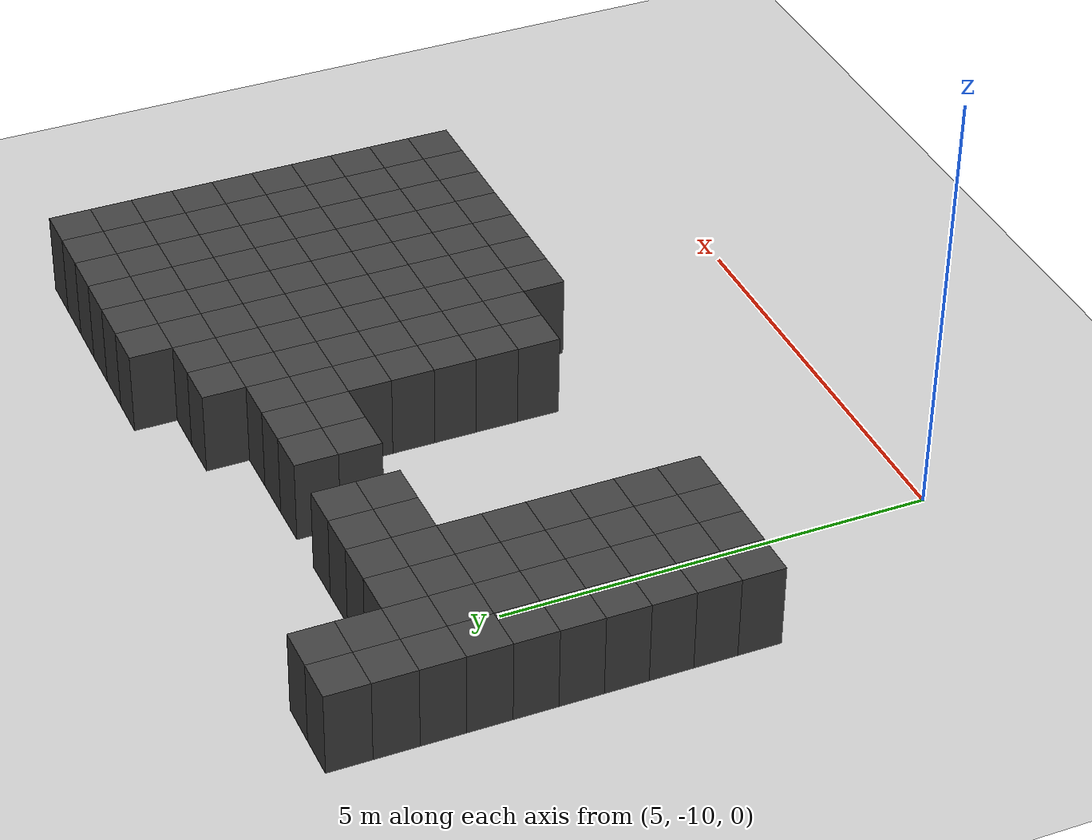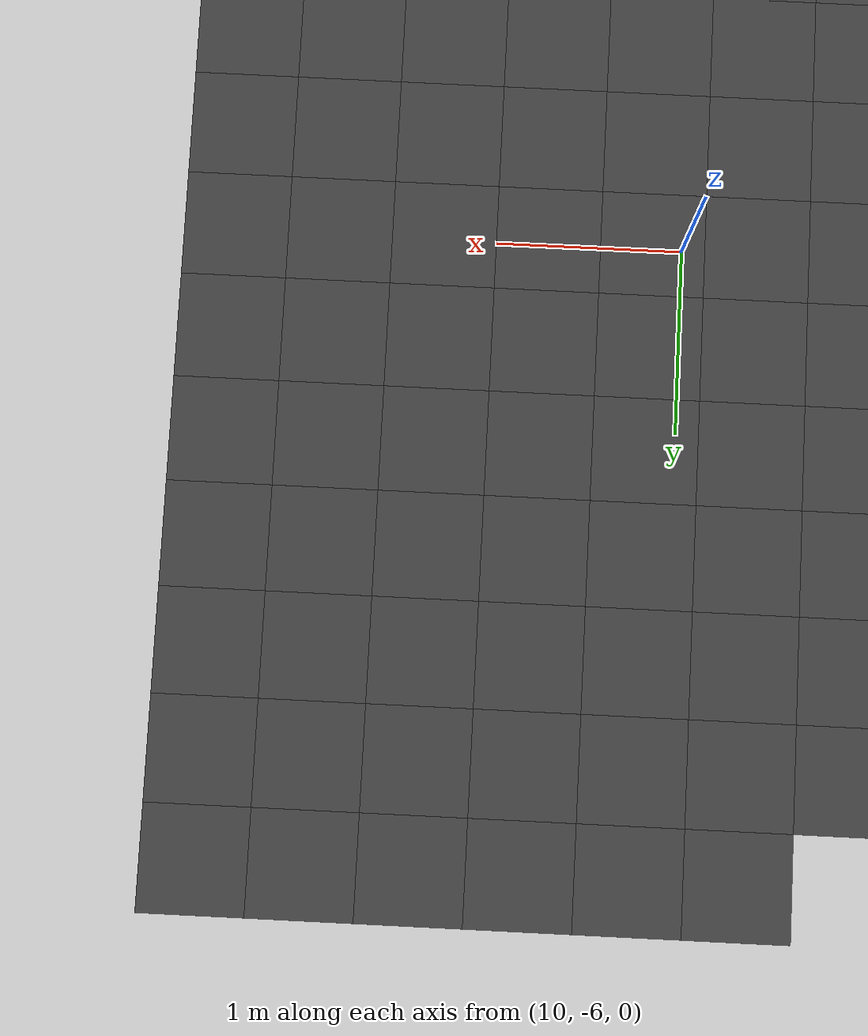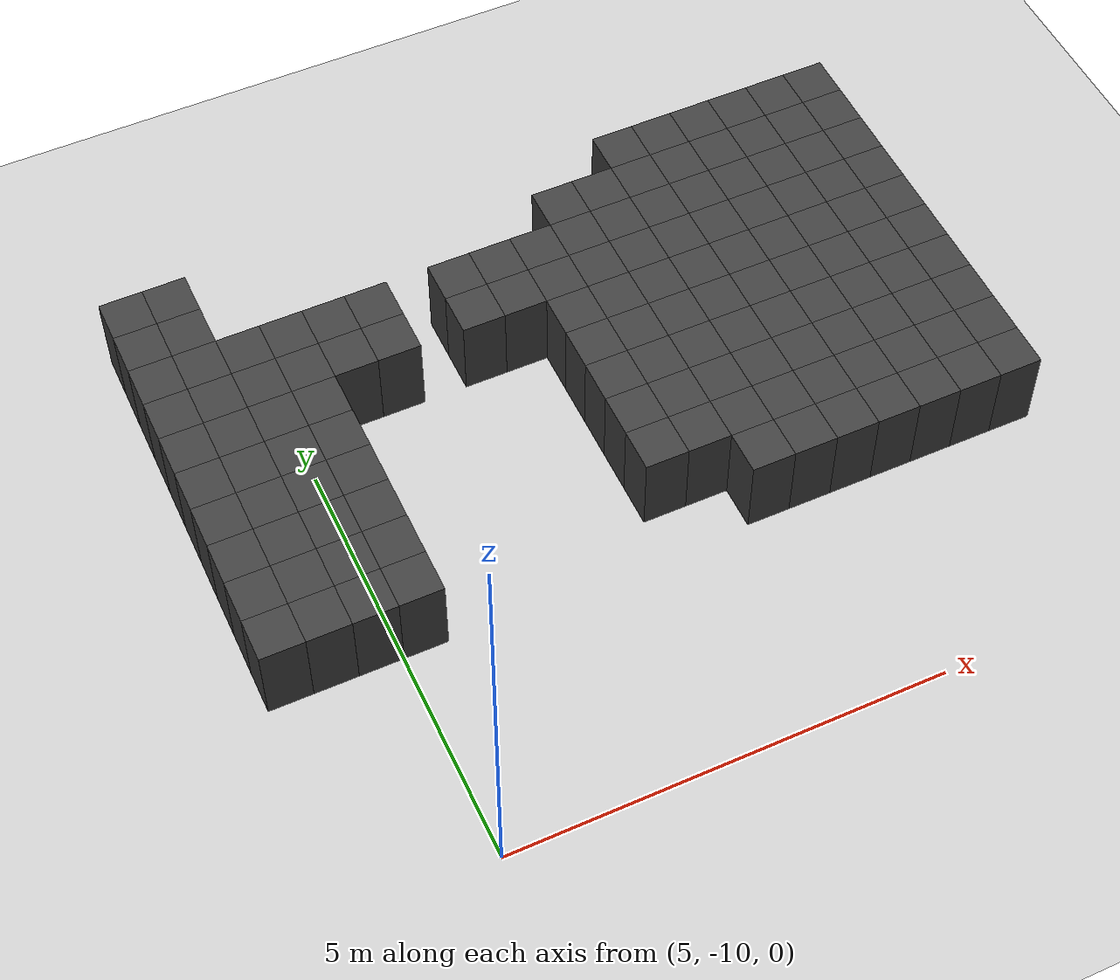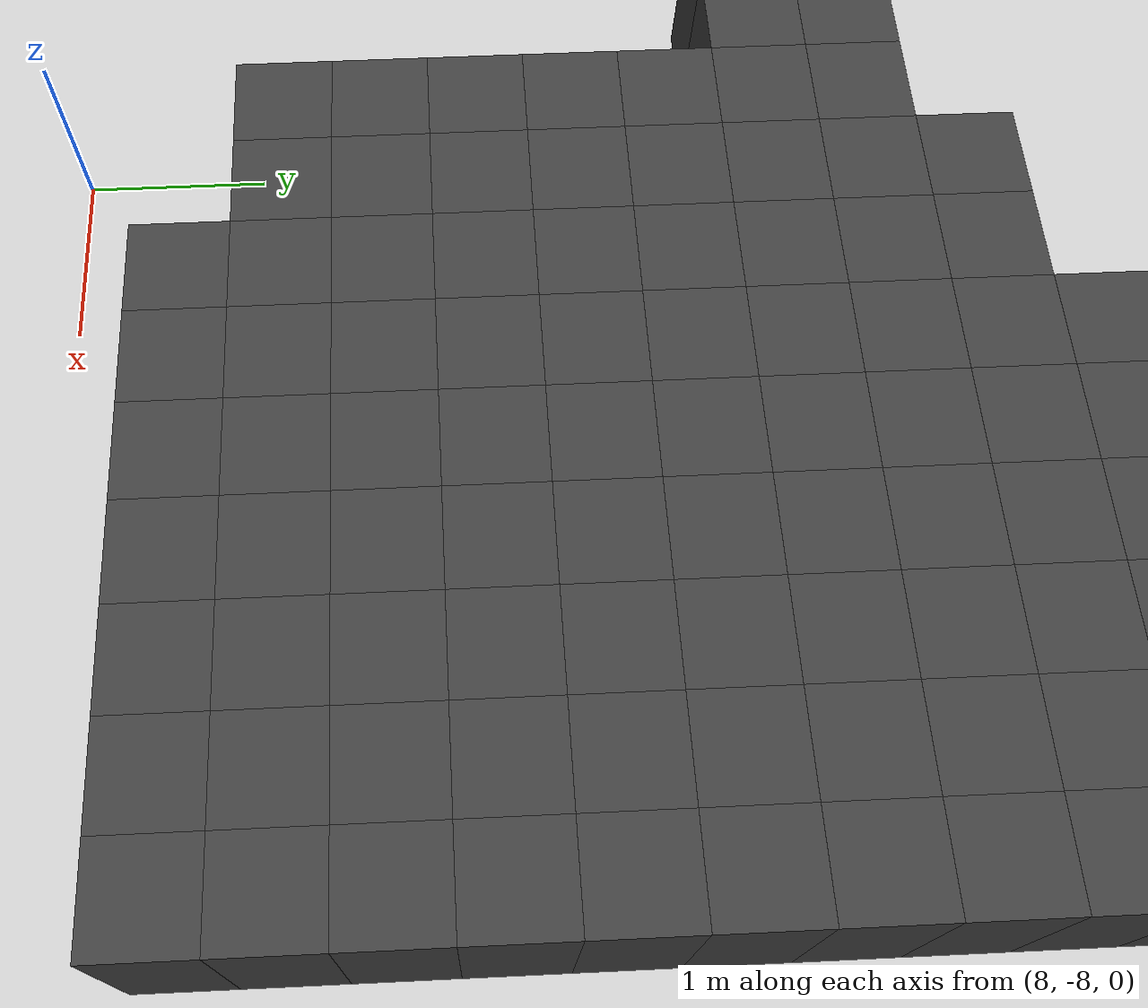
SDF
<sdf version="1.7">
 <world name="map_14980">
  <model name="ground_plane">
   <static>true</static>
   <link name="link">
    <collision name="collision">
     <geometry><plane><normal>0 0 1</normal><size>200 200</size></plane></geometry>
    </collision>
    <visual name="visual">
     <geometry><plane><normal>0 0 1</normal><size>200 200</size></plane></geometry>
     <material><ambient>0.8 0.8 0.8 1</ambient><diffuse>0.8 0.8 0.8 1</diffuse></material>
    </visual>
   </link>
  </model>
  <model name="maze_environment">
   <static>true</static>
   <link name="wall_1093">
    <pose>3.750 -2.750 0.500 0 0 0</pose>
    <collision name="col"><geometry><box><size>0.5 0.5 1.0</size></box></geometry></collision>
    <visual name="vis">
     <geometry><box><size>0.5 0.5 1.0</size></box></geometry>
     <material><ambient>0.15 0.15 0.15 1</ambient><diffuse>0.25 0.25 0.25 1</diffuse></material>
    </visual>
   </link>
   <link name="wall_1094">
    <pose>4.250 -2.750 0.500 0 0 0</pose>
    <collision name="col"><geometry><box><size>0.5 0.5 1.0</size></box></geometry></collision>
    <visual name="vis">
     <geometry><box><size>0.5 0.5 1.0</size></box></geometry>
     <material><ambient>0.15 0.15 0.15 1</ambient><diffuse>0.25 0.25 0.25 1</diffuse></material>
    </visual>
   </link>
   <link name="wall_1095">
    <pose>9.750 -2.750 0.500 0 0 0</pose>
    <collision name="col"><geometry><box><size>0.5 0.5 1.0</size></box></geometry></collision>
    <visual name="vis">
     <geometry><box><size>0.5 0.5 1.0</size></box></geometry>
     <material><ambient>0.15 0.15 0.15 1</ambient><diffuse>0.25 0.25 0.25 1</diffuse></material>
    </visual>
   </link>
   <link name="wall_1096">
    <pose>10.250 -2.750 0.500 0 0 0</pose>
    <collision name="col"><geometry><box><size>0.5 0.5 1.0</size></box></geometry></collision>
    <visual name="vis">
     <geometry><box><size>0.5 0.5 1.0</size></box></geometry>
     <material><ambient>0.15 0.15 0.15 1</ambient><diffuse>0.25 0.25 0.25 1</diffuse></material>
    </visual>
   </link>
   <link name="wall_1097">
    <pose>10.750 -2.750 0.500 0 0 0</pose>
    <collision name="col"><geometry><box><size>0.5 0.5 1.0</size></box></geometry></collision>
    <visual name="vis">
     <geometry><box><size>0.5 0.5 1.0</size></box></geometry>
     <material><ambient>0.15 0.15 0.15 1</ambient><diffuse>0.25 0.25 0.25 1</diffuse></material>
    </visual>
   </link>
   <link name="wall_1098">
    <pose>11.250 -2.750 0.500 0 0 0</pose>
    <collision name="col"><geometry><box><size>0.5 0.5 1.0</size></box></geometry></collision>
    <visual name="vis">
     <geometry><box><size>0.5 0.5 1.0</size></box></geometry>
     <material><ambient>0.15 0.15 0.15 1</ambient><diffuse>0.25 0.25 0.25 1</diffuse></material>
    </visual>
   </link>
   <link name="wall_1099">
    <pose>11.750 -2.750 0.500 0 0 0</pose>
    <collision name="col"><geometry><box><size>0.5 0.5 1.0</size></box></geometry></collision>
    <visual name="vis">
     <geometry><box><size>0.5 0.5 1.0</size></box></geometry>
     <material><ambient>0.15 0.15 0.15 1</ambient><diffuse>0.25 0.25 0.25 1</diffuse></material>
    </visual>
   </link>
   <link name="wall_1100">
    <pose>12.250 -2.750 0.500 0 0 0</pose>
    <collision name="col"><geometry><box><size>0.5 0.5 1.0</size></box></geometry></collision>
    <visual name="vis">
     <geometry><box><size>0.5 0.5 1.0</size></box></geometry>
     <material><ambient>0.15 0.15 0.15 1</ambient><diffuse>0.25 0.25 0.25 1</diffuse></material>
    </visual>
   </link>
   <link name="wall_1129">
    <pose>3.750 -3.250 0.500 0 0 0</pose>
    <collision name="col"><geometry><box><size>0.5 0.5 1.0</size></box></geometry></collision>
    <visual name="vis">
     <geometry><box><size>0.5 0.5 1.0</size></box></geometry>
     <material><ambient>0.15 0.15 0.15 1</ambient><diffuse>0.25 0.25 0.25 1</diffuse></material>
    </visual>
   </link>
   <link name="wall_1130">
    <pose>4.250 -3.250 0.500 0 0 0</pose>
    <collision name="col"><geometry><box><size>0.5 0.5 1.0</size></box></geometry></collision>
    <visual name="vis">
     <geometry><box><size>0.5 0.5 1.0</size></box></geometry>
     <material><ambient>0.15 0.15 0.15 1</ambient><diffuse>0.25 0.25 0.25 1</diffuse></material>
    </visual>
   </link>
   <link name="wall_1131">
    <pose>8.750 -3.250 0.500 0 0 0</pose>
    <collision name="col"><geometry><box><size>0.5 0.5 1.0</size></box></geometry></collision>
    <visual name="vis">
     <geometry><box><size>0.5 0.5 1.0</size></box></geometry>
     <material><ambient>0.15 0.15 0.15 1</ambient><diffuse>0.25 0.25 0.25 1</diffuse></material>
    </visual>
   </link>
   <link name="wall_1132">
    <pose>9.250 -3.250 0.500 0 0 0</pose>
    <collision name="col"><geometry><box><size>0.5 0.5 1.0</size></box></geometry></collision>
    <visual name="vis">
     <geometry><box><size>0.5 0.5 1.0</size></box></geometry>
     <material><ambient>0.15 0.15 0.15 1</ambient><diffuse>0.25 0.25 0.25 1</diffuse></material>
    </visual>
   </link>
   <link name="wall_1133">
    <pose>9.750 -3.250 0.500 0 0 0</pose>
    <collision name="col"><geometry><box><size>0.5 0.5 1.0</size></box></geometry></collision>
    <visual name="vis">
     <geometry><box><size>0.5 0.5 1.0</size></box></geometry>
     <material><ambient>0.15 0.15 0.15 1</ambient><diffuse>0.25 0.25 0.25 1</diffuse></material>
    </visual>
   </link>
   <link name="wall_1134">
    <pose>10.250 -3.250 0.500 0 0 0</pose>
    <collision name="col"><geometry><box><size>0.5 0.5 1.0</size></box></geometry></collision>
    <visual name="vis">
     <geometry><box><size>0.5 0.5 1.0</size></box></geometry>
     <material><ambient>0.15 0.15 0.15 1</ambient><diffuse>0.25 0.25 0.25 1</diffuse></material>
    </visual>
   </link>
   <link name="wall_1135">
    <pose>10.750 -3.250 0.500 0 0 0</pose>
    <collision name="col"><geometry><box><size>0.5 0.5 1.0</size></box></geometry></collision>
    <visual name="vis">
     <geometry><box><size>0.5 0.5 1.0</size></box></geometry>
     <material><ambient>0.15 0.15 0.15 1</ambient><diffuse>0.25 0.25 0.25 1</diffuse></material>
    </visual>
   </link>
   <link name="wall_1136">
    <pose>11.250 -3.250 0.500 0 0 0</pose>
    <collision name="col"><geometry><box><size>0.5 0.5 1.0</size></box></geometry></collision>
    <visual name="vis">
     <geometry><box><size>0.5 0.5 1.0</size></box></geometry>
     <material><ambient>0.15 0.15 0.15 1</ambient><diffuse>0.25 0.25 0.25 1</diffuse></material>
    </visual>
   </link>
   <link name="wall_1137">
    <pose>11.750 -3.250 0.500 0 0 0</pose>
    <collision name="col"><geometry><box><size>0.5 0.5 1.0</size></box></geometry></collision>
    <visual name="vis">
     <geometry><box><size>0.5 0.5 1.0</size></box></geometry>
     <material><ambient>0.15 0.15 0.15 1</ambient><diffuse>0.25 0.25 0.25 1</diffuse></material>
    </visual>
   </link>
   <link name="wall_1138">
    <pose>12.250 -3.250 0.500 0 0 0</pose>
    <collision name="col"><geometry><box><size>0.5 0.5 1.0</size></box></geometry></collision>
    <visual name="vis">
     <geometry><box><size>0.5 0.5 1.0</size></box></geometry>
     <material><ambient>0.15 0.15 0.15 1</ambient><diffuse>0.25 0.25 0.25 1</diffuse></material>
    </visual>
   </link>
   <link name="wall_1167">
    <pose>3.750 -3.750 0.500 0 0 0</pose>
    <collision name="col"><geometry><box><size>0.5 0.5 1.0</size></box></geometry></collision>
    <visual name="vis">
     <geometry><box><size>0.5 0.5 1.0</size></box></geometry>
     <material><ambient>0.15 0.15 0.15 1</ambient><diffuse>0.25 0.25 0.25 1</diffuse></material>
    </visual>
   </link>
   <link name="wall_1168">
    <pose>4.250 -3.750 0.500 0 0 0</pose>
    <collision name="col"><geometry><box><size>0.5 0.5 1.0</size></box></geometry></collision>
    <visual name="vis">
     <geometry><box><size>0.5 0.5 1.0</size></box></geometry>
     <material><ambient>0.15 0.15 0.15 1</ambient><diffuse>0.25 0.25 0.25 1</diffuse></material>
    </visual>
   </link>
   <link name="wall_1169">
    <pose>4.750 -3.750 0.500 0 0 0</pose>
    <collision name="col"><geometry><box><size>0.5 0.5 1.0</size></box></geometry></collision>
    <visual name="vis">
     <geometry><box><size>0.5 0.5 1.0</size></box></geometry>
     <material><ambient>0.15 0.15 0.15 1</ambient><diffuse>0.25 0.25 0.25 1</diffuse></material>
    </visual>
   </link>
   <link name="wall_1170">
    <pose>5.250 -3.750 0.500 0 0 0</pose>
    <collision name="col"><geometry><box><size>0.5 0.5 1.0</size></box></geometry></collision>
    <visual name="vis">
     <geometry><box><size>0.5 0.5 1.0</size></box></geometry>
     <material><ambient>0.15 0.15 0.15 1</ambient><diffuse>0.25 0.25 0.25 1</diffuse></material>
    </visual>
   </link>
   <link name="wall_1171">
    <pose>5.750 -3.750 0.500 0 0 0</pose>
    <collision name="col"><geometry><box><size>0.5 0.5 1.0</size></box></geometry></collision>
    <visual name="vis">
     <geometry><box><size>0.5 0.5 1.0</size></box></geometry>
     <material><ambient>0.15 0.15 0.15 1</ambient><diffuse>0.25 0.25 0.25 1</diffuse></material>
    </visual>
   </link>
   <link name="wall_1172">
    <pose>6.250 -3.750 0.500 0 0 0</pose>
    <collision name="col"><geometry><box><size>0.5 0.5 1.0</size></box></geometry></collision>
    <visual name="vis">
     <geometry><box><size>0.5 0.5 1.0</size></box></geometry>
     <material><ambient>0.15 0.15 0.15 1</ambient><diffuse>0.25 0.25 0.25 1</diffuse></material>
    </visual>
   </link>
   <link name="wall_1173">
    <pose>7.250 -3.750 0.500 0 0 0</pose>
    <collision name="col"><geometry><box><size>0.5 0.5 1.0</size></box></geometry></collision>
    <visual name="vis">
     <geometry><box><size>0.5 0.5 1.0</size></box></geometry>
     <material><ambient>0.15 0.15 0.15 1</ambient><diffuse>0.25 0.25 0.25 1</diffuse></material>
    </visual>
   </link>
   <link name="wall_1174">
    <pose>7.750 -3.750 0.500 0 0 0</pose>
    <collision name="col"><geometry><box><size>0.5 0.5 1.0</size></box></geometry></collision>
    <visual name="vis">
     <geometry><box><size>0.5 0.5 1.0</size></box></geometry>
     <material><ambient>0.15 0.15 0.15 1</ambient><diffuse>0.25 0.25 0.25 1</diffuse></material>
    </visual>
   </link>
   <link name="wall_1175">
    <pose>8.250 -3.750 0.500 0 0 0</pose>
    <collision name="col"><geometry><box><size>0.5 0.5 1.0</size></box></geometry></collision>
    <visual name="vis">
     <geometry><box><size>0.5 0.5 1.0</size></box></geometry>
     <material><ambient>0.15 0.15 0.15 1</ambient><diffuse>0.25 0.25 0.25 1</diffuse></material>
    </visual>
   </link>
   <link name="wall_1176">
    <pose>8.750 -3.750 0.500 0 0 0</pose>
    <collision name="col"><geometry><box><size>0.5 0.5 1.0</size></box></geometry></collision>
    <visual name="vis">
     <geometry><box><size>0.5 0.5 1.0</size></box></geometry>
     <material><ambient>0.15 0.15 0.15 1</ambient><diffuse>0.25 0.25 0.25 1</diffuse></material>
    </visual>
   </link>
   <link name="wall_1177">
    <pose>9.250 -3.750 0.500 0 0 0</pose>
    <collision name="col"><geometry><box><size>0.5 0.5 1.0</size></box></geometry></collision>
    <visual name="vis">
     <geometry><box><size>0.5 0.5 1.0</size></box></geometry>
     <material><ambient>0.15 0.15 0.15 1</ambient><diffuse>0.25 0.25 0.25 1</diffuse></material>
    </visual>
   </link>
   <link name="wall_1178">
    <pose>9.750 -3.750 0.500 0 0 0</pose>
    <collision name="col"><geometry><box><size>0.5 0.5 1.0</size></box></geometry></collision>
    <visual name="vis">
     <geometry><box><size>0.5 0.5 1.0</size></box></geometry>
     <material><ambient>0.15 0.15 0.15 1</ambient><diffuse>0.25 0.25 0.25 1</diffuse></material>
    </visual>
   </link>
   <link name="wall_1179">
    <pose>10.250 -3.750 0.500 0 0 0</pose>
    <collision name="col"><geometry><box><size>0.5 0.5 1.0</size></box></geometry></collision>
    <visual name="vis">
     <geometry><box><size>0.5 0.5 1.0</size></box></geometry>
     <material><ambient>0.15 0.15 0.15 1</ambient><diffuse>0.25 0.25 0.25 1</diffuse></material>
    </visual>
   </link>
   <link name="wall_1180">
    <pose>10.750 -3.750 0.500 0 0 0</pose>
    <collision name="col"><geometry><box><size>0.5 0.5 1.0</size></box></geometry></collision>
    <visual name="vis">
     <geometry><box><size>0.5 0.5 1.0</size></box></geometry>
     <material><ambient>0.15 0.15 0.15 1</ambient><diffuse>0.25 0.25 0.25 1</diffuse></material>
    </visual>
   </link>
   <link name="wall_1181">
    <pose>11.250 -3.750 0.500 0 0 0</pose>
    <collision name="col"><geometry><box><size>0.5 0.5 1.0</size></box></geometry></collision>
    <visual name="vis">
     <geometry><box><size>0.5 0.5 1.0</size></box></geometry>
     <material><ambient>0.15 0.15 0.15 1</ambient><diffuse>0.25 0.25 0.25 1</diffuse></material>
    </visual>
   </link>
   <link name="wall_1182">
    <pose>11.750 -3.750 0.500 0 0 0</pose>
    <collision name="col"><geometry><box><size>0.5 0.5 1.0</size></box></geometry></collision>
    <visual name="vis">
     <geometry><box><size>0.5 0.5 1.0</size></box></geometry>
     <material><ambient>0.15 0.15 0.15 1</ambient><diffuse>0.25 0.25 0.25 1</diffuse></material>
    </visual>
   </link>
   <link name="wall_1183">
    <pose>12.250 -3.750 0.500 0 0 0</pose>
    <collision name="col"><geometry><box><size>0.5 0.5 1.0</size></box></geometry></collision>
    <visual name="vis">
     <geometry><box><size>0.5 0.5 1.0</size></box></geometry>
     <material><ambient>0.15 0.15 0.15 1</ambient><diffuse>0.25 0.25 0.25 1</diffuse></material>
    </visual>
   </link>
   <link name="wall_1212">
    <pose>3.750 -4.250 0.500 0 0 0</pose>
    <collision name="col"><geometry><box><size>0.5 0.5 1.0</size></box></geometry></collision>
    <visual name="vis">
     <geometry><box><size>0.5 0.5 1.0</size></box></geometry>
     <material><ambient>0.15 0.15 0.15 1</ambient><diffuse>0.25 0.25 0.25 1</diffuse></material>
    </visual>
   </link>
   <link name="wall_1213">
    <pose>4.250 -4.250 0.500 0 0 0</pose>
    <collision name="col"><geometry><box><size>0.5 0.5 1.0</size></box></geometry></collision>
    <visual name="vis">
     <geometry><box><size>0.5 0.5 1.0</size></box></geometry>
     <material><ambient>0.15 0.15 0.15 1</ambient><diffuse>0.25 0.25 0.25 1</diffuse></material>
    </visual>
   </link>
   <link name="wall_1214">
    <pose>4.750 -4.250 0.500 0 0 0</pose>
    <collision name="col"><geometry><box><size>0.5 0.5 1.0</size></box></geometry></collision>
    <visual name="vis">
     <geometry><box><size>0.5 0.5 1.0</size></box></geometry>
     <material><ambient>0.15 0.15 0.15 1</ambient><diffuse>0.25 0.25 0.25 1</diffuse></material>
    </visual>
   </link>
   <link name="wall_1215">
    <pose>5.250 -4.250 0.500 0 0 0</pose>
    <collision name="col"><geometry><box><size>0.5 0.5 1.0</size></box></geometry></collision>
    <visual name="vis">
     <geometry><box><size>0.5 0.5 1.0</size></box></geometry>
     <material><ambient>0.15 0.15 0.15 1</ambient><diffuse>0.25 0.25 0.25 1</diffuse></material>
    </visual>
   </link>
   <link name="wall_1216">
    <pose>5.750 -4.250 0.500 0 0 0</pose>
    <collision name="col"><geometry><box><size>0.5 0.5 1.0</size></box></geometry></collision>
    <visual name="vis">
     <geometry><box><size>0.5 0.5 1.0</size></box></geometry>
     <material><ambient>0.15 0.15 0.15 1</ambient><diffuse>0.25 0.25 0.25 1</diffuse></material>
    </visual>
   </link>
   <link name="wall_1217">
    <pose>6.250 -4.250 0.500 0 0 0</pose>
    <collision name="col"><geometry><box><size>0.5 0.5 1.0</size></box></geometry></collision>
    <visual name="vis">
     <geometry><box><size>0.5 0.5 1.0</size></box></geometry>
     <material><ambient>0.15 0.15 0.15 1</ambient><diffuse>0.25 0.25 0.25 1</diffuse></material>
    </visual>
   </link>
   <link name="wall_1218">
    <pose>7.250 -4.250 0.500 0 0 0</pose>
    <collision name="col"><geometry><box><size>0.5 0.5 1.0</size></box></geometry></collision>
    <visual name="vis">
     <geometry><box><size>0.5 0.5 1.0</size></box></geometry>
     <material><ambient>0.15 0.15 0.15 1</ambient><diffuse>0.25 0.25 0.25 1</diffuse></material>
    </visual>
   </link>
   <link name="wall_1219">
    <pose>7.750 -4.250 0.500 0 0 0</pose>
    <collision name="col"><geometry><box><size>0.5 0.5 1.0</size></box></geometry></collision>
    <visual name="vis">
     <geometry><box><size>0.5 0.5 1.0</size></box></geometry>
     <material><ambient>0.15 0.15 0.15 1</ambient><diffuse>0.25 0.25 0.25 1</diffuse></material>
    </visual>
   </link>
   <link name="wall_1220">
    <pose>8.250 -4.250 0.500 0 0 0</pose>
    <collision name="col"><geometry><box><size>0.5 0.5 1.0</size></box></geometry></collision>
    <visual name="vis">
     <geometry><box><size>0.5 0.5 1.0</size></box></geometry>
     <material><ambient>0.15 0.15 0.15 1</ambient><diffuse>0.25 0.25 0.25 1</diffuse></material>
    </visual>
   </link>
   <link name="wall_1221">
    <pose>8.750 -4.250 0.500 0 0 0</pose>
    <collision name="col"><geometry><box><size>0.5 0.5 1.0</size></box></geometry></collision>
    <visual name="vis">
     <geometry><box><size>0.5 0.5 1.0</size></box></geometry>
     <material><ambient>0.15 0.15 0.15 1</ambient><diffuse>0.25 0.25 0.25 1</diffuse></material>
    </visual>
   </link>
   <link name="wall_1222">
    <pose>9.250 -4.250 0.500 0 0 0</pose>
    <collision name="col"><geometry><box><size>0.5 0.5 1.0</size></box></geometry></collision>
    <visual name="vis">
     <geometry><box><size>0.5 0.5 1.0</size></box></geometry>
     <material><ambient>0.15 0.15 0.15 1</ambient><diffuse>0.25 0.25 0.25 1</diffuse></material>
    </visual>
   </link>
   <link name="wall_1223">
    <pose>9.750 -4.250 0.500 0 0 0</pose>
    <collision name="col"><geometry><box><size>0.5 0.5 1.0</size></box></geometry></collision>
    <visual name="vis">
     <geometry><box><size>0.5 0.5 1.0</size></box></geometry>
     <material><ambient>0.15 0.15 0.15 1</ambient><diffuse>0.25 0.25 0.25 1</diffuse></material>
    </visual>
   </link>
   <link name="wall_1224">
    <pose>10.250 -4.250 0.500 0 0 0</pose>
    <collision name="col"><geometry><box><size>0.5 0.5 1.0</size></box></geometry></collision>
    <visual name="vis">
     <geometry><box><size>0.5 0.5 1.0</size></box></geometry>
     <material><ambient>0.15 0.15 0.15 1</ambient><diffuse>0.25 0.25 0.25 1</diffuse></material>
    </visual>
   </link>
   <link name="wall_1225">
    <pose>10.750 -4.250 0.500 0 0 0</pose>
    <collision name="col"><geometry><box><size>0.5 0.5 1.0</size></box></geometry></collision>
    <visual name="vis">
     <geometry><box><size>0.5 0.5 1.0</size></box></geometry>
     <material><ambient>0.15 0.15 0.15 1</ambient><diffuse>0.25 0.25 0.25 1</diffuse></material>
    </visual>
   </link>
   <link name="wall_1226">
    <pose>11.250 -4.250 0.500 0 0 0</pose>
    <collision name="col"><geometry><box><size>0.5 0.5 1.0</size></box></geometry></collision>
    <visual name="vis">
     <geometry><box><size>0.5 0.5 1.0</size></box></geometry>
     <material><ambient>0.15 0.15 0.15 1</ambient><diffuse>0.25 0.25 0.25 1</diffuse></material>
    </visual>
   </link>
   <link name="wall_1227">
    <pose>11.750 -4.250 0.500 0 0 0</pose>
    <collision name="col"><geometry><box><size>0.5 0.5 1.0</size></box></geometry></collision>
    <visual name="vis">
     <geometry><box><size>0.5 0.5 1.0</size></box></geometry>
     <material><ambient>0.15 0.15 0.15 1</ambient><diffuse>0.25 0.25 0.25 1</diffuse></material>
    </visual>
   </link>
   <link name="wall_1228">
    <pose>12.250 -4.250 0.500 0 0 0</pose>
    <collision name="col"><geometry><box><size>0.5 0.5 1.0</size></box></geometry></collision>
    <visual name="vis">
     <geometry><box><size>0.5 0.5 1.0</size></box></geometry>
     <material><ambient>0.15 0.15 0.15 1</ambient><diffuse>0.25 0.25 0.25 1</diffuse></material>
    </visual>
   </link>
   <link name="wall_1257">
    <pose>3.750 -4.750 0.500 0 0 0</pose>
    <collision name="col"><geometry><box><size>0.5 0.5 1.0</size></box></geometry></collision>
    <visual name="vis">
     <geometry><box><size>0.5 0.5 1.0</size></box></geometry>
     <material><ambient>0.15 0.15 0.15 1</ambient><diffuse>0.25 0.25 0.25 1</diffuse></material>
    </visual>
   </link>
   <link name="wall_1258">
    <pose>4.250 -4.750 0.500 0 0 0</pose>
    <collision name="col"><geometry><box><size>0.5 0.5 1.0</size></box></geometry></collision>
    <visual name="vis">
     <geometry><box><size>0.5 0.5 1.0</size></box></geometry>
     <material><ambient>0.15 0.15 0.15 1</ambient><diffuse>0.25 0.25 0.25 1</diffuse></material>
    </visual>
   </link>
   <link name="wall_1259">
    <pose>4.750 -4.750 0.500 0 0 0</pose>
    <collision name="col"><geometry><box><size>0.5 0.5 1.0</size></box></geometry></collision>
    <visual name="vis">
     <geometry><box><size>0.5 0.5 1.0</size></box></geometry>
     <material><ambient>0.15 0.15 0.15 1</ambient><diffuse>0.25 0.25 0.25 1</diffuse></material>
    </visual>
   </link>
   <link name="wall_1260">
    <pose>5.250 -4.750 0.500 0 0 0</pose>
    <collision name="col"><geometry><box><size>0.5 0.5 1.0</size></box></geometry></collision>
    <visual name="vis">
     <geometry><box><size>0.5 0.5 1.0</size></box></geometry>
     <material><ambient>0.15 0.15 0.15 1</ambient><diffuse>0.25 0.25 0.25 1</diffuse></material>
    </visual>
   </link>
   <link name="wall_1261">
    <pose>8.250 -4.750 0.500 0 0 0</pose>
    <collision name="col"><geometry><box><size>0.5 0.5 1.0</size></box></geometry></collision>
    <visual name="vis">
     <geometry><box><size>0.5 0.5 1.0</size></box></geometry>
     <material><ambient>0.15 0.15 0.15 1</ambient><diffuse>0.25 0.25 0.25 1</diffuse></material>
    </visual>
   </link>
   <link name="wall_1262">
    <pose>8.750 -4.750 0.500 0 0 0</pose>
    <collision name="col"><geometry><box><size>0.5 0.5 1.0</size></box></geometry></collision>
    <visual name="vis">
     <geometry><box><size>0.5 0.5 1.0</size></box></geometry>
     <material><ambient>0.15 0.15 0.15 1</ambient><diffuse>0.25 0.25 0.25 1</diffuse></material>
    </visual>
   </link>
   <link name="wall_1263">
    <pose>9.250 -4.750 0.500 0 0 0</pose>
    <collision name="col"><geometry><box><size>0.5 0.5 1.0</size></box></geometry></collision>
    <visual name="vis">
     <geometry><box><size>0.5 0.5 1.0</size></box></geometry>
     <material><ambient>0.15 0.15 0.15 1</ambient><diffuse>0.25 0.25 0.25 1</diffuse></material>
    </visual>
   </link>
   <link name="wall_1264">
    <pose>9.750 -4.750 0.500 0 0 0</pose>
    <collision name="col"><geometry><box><size>0.5 0.5 1.0</size></box></geometry></collision>
    <visual name="vis">
     <geometry><box><size>0.5 0.5 1.0</size></box></geometry>
     <material><ambient>0.15 0.15 0.15 1</ambient><diffuse>0.25 0.25 0.25 1</diffuse></material>
    </visual>
   </link>
   <link name="wall_1265">
    <pose>10.250 -4.750 0.500 0 0 0</pose>
    <collision name="col"><geometry><box><size>0.5 0.5 1.0</size></box></geometry></collision>
    <visual name="vis">
     <geometry><box><size>0.5 0.5 1.0</size></box></geometry>
     <material><ambient>0.15 0.15 0.15 1</ambient><diffuse>0.25 0.25 0.25 1</diffuse></material>
    </visual>
   </link>
   <link name="wall_1266">
    <pose>10.750 -4.750 0.500 0 0 0</pose>
    <collision name="col"><geometry><box><size>0.5 0.5 1.0</size></box></geometry></collision>
    <visual name="vis">
     <geometry><box><size>0.5 0.5 1.0</size></box></geometry>
     <material><ambient>0.15 0.15 0.15 1</ambient><diffuse>0.25 0.25 0.25 1</diffuse></material>
    </visual>
   </link>
   <link name="wall_1267">
    <pose>11.250 -4.750 0.500 0 0 0</pose>
    <collision name="col"><geometry><box><size>0.5 0.5 1.0</size></box></geometry></collision>
    <visual name="vis">
     <geometry><box><size>0.5 0.5 1.0</size></box></geometry>
     <material><ambient>0.15 0.15 0.15 1</ambient><diffuse>0.25 0.25 0.25 1</diffuse></material>
    </visual>
   </link>
   <link name="wall_1268">
    <pose>11.750 -4.750 0.500 0 0 0</pose>
    <collision name="col"><geometry><box><size>0.5 0.5 1.0</size></box></geometry></collision>
    <visual name="vis">
     <geometry><box><size>0.5 0.5 1.0</size></box></geometry>
     <material><ambient>0.15 0.15 0.15 1</ambient><diffuse>0.25 0.25 0.25 1</diffuse></material>
    </visual>
   </link>
   <link name="wall_1269">
    <pose>12.250 -4.750 0.500 0 0 0</pose>
    <collision name="col"><geometry><box><size>0.5 0.5 1.0</size></box></geometry></collision>
    <visual name="vis">
     <geometry><box><size>0.5 0.5 1.0</size></box></geometry>
     <material><ambient>0.15 0.15 0.15 1</ambient><diffuse>0.25 0.25 0.25 1</diffuse></material>
    </visual>
   </link>
   <link name="wall_1301">
    <pose>3.750 -5.250 0.500 0 0 0</pose>
    <collision name="col"><geometry><box><size>0.5 0.5 1.0</size></box></geometry></collision>
    <visual name="vis">
     <geometry><box><size>0.5 0.5 1.0</size></box></geometry>
     <material><ambient>0.15 0.15 0.15 1</ambient><diffuse>0.25 0.25 0.25 1</diffuse></material>
    </visual>
   </link>
   <link name="wall_1302">
    <pose>4.250 -5.250 0.500 0 0 0</pose>
    <collision name="col"><geometry><box><size>0.5 0.5 1.0</size></box></geometry></collision>
    <visual name="vis">
     <geometry><box><size>0.5 0.5 1.0</size></box></geometry>
     <material><ambient>0.15 0.15 0.15 1</ambient><diffuse>0.25 0.25 0.25 1</diffuse></material>
    </visual>
   </link>
   <link name="wall_1303">
    <pose>4.750 -5.250 0.500 0 0 0</pose>
    <collision name="col"><geometry><box><size>0.5 0.5 1.0</size></box></geometry></collision>
    <visual name="vis">
     <geometry><box><size>0.5 0.5 1.0</size></box></geometry>
     <material><ambient>0.15 0.15 0.15 1</ambient><diffuse>0.25 0.25 0.25 1</diffuse></material>
    </visual>
   </link>
   <link name="wall_1304">
    <pose>5.250 -5.250 0.500 0 0 0</pose>
    <collision name="col"><geometry><box><size>0.5 0.5 1.0</size></box></geometry></collision>
    <visual name="vis">
     <geometry><box><size>0.5 0.5 1.0</size></box></geometry>
     <material><ambient>0.15 0.15 0.15 1</ambient><diffuse>0.25 0.25 0.25 1</diffuse></material>
    </visual>
   </link>
   <link name="wall_1305">
    <pose>8.250 -5.250 0.500 0 0 0</pose>
    <collision name="col"><geometry><box><size>0.5 0.5 1.0</size></box></geometry></collision>
    <visual name="vis">
     <geometry><box><size>0.5 0.5 1.0</size></box></geometry>
     <material><ambient>0.15 0.15 0.15 1</ambient><diffuse>0.25 0.25 0.25 1</diffuse></material>
    </visual>
   </link>
   <link name="wall_1306">
    <pose>8.750 -5.250 0.500 0 0 0</pose>
    <collision name="col"><geometry><box><size>0.5 0.5 1.0</size></box></geometry></collision>
    <visual name="vis">
     <geometry><box><size>0.5 0.5 1.0</size></box></geometry>
     <material><ambient>0.15 0.15 0.15 1</ambient><diffuse>0.25 0.25 0.25 1</diffuse></material>
    </visual>
   </link>
   <link name="wall_1307">
    <pose>9.250 -5.250 0.500 0 0 0</pose>
    <collision name="col"><geometry><box><size>0.5 0.5 1.0</size></box></geometry></collision>
    <visual name="vis">
     <geometry><box><size>0.5 0.5 1.0</size></box></geometry>
     <material><ambient>0.15 0.15 0.15 1</ambient><diffuse>0.25 0.25 0.25 1</diffuse></material>
    </visual>
   </link>
   <link name="wall_1308">
    <pose>9.750 -5.250 0.500 0 0 0</pose>
    <collision name="col"><geometry><box><size>0.5 0.5 1.0</size></box></geometry></collision>
    <visual name="vis">
     <geometry><box><size>0.5 0.5 1.0</size></box></geometry>
     <material><ambient>0.15 0.15 0.15 1</ambient><diffuse>0.25 0.25 0.25 1</diffuse></material>
    </visual>
   </link>
   <link name="wall_1309">
    <pose>10.250 -5.250 0.500 0 0 0</pose>
    <collision name="col"><geometry><box><size>0.5 0.5 1.0</size></box></geometry></collision>
    <visual name="vis">
     <geometry><box><size>0.5 0.5 1.0</size></box></geometry>
     <material><ambient>0.15 0.15 0.15 1</ambient><diffuse>0.25 0.25 0.25 1</diffuse></material>
    </visual>
   </link>
   <link name="wall_1310">
    <pose>10.750 -5.250 0.500 0 0 0</pose>
    <collision name="col"><geometry><box><size>0.5 0.5 1.0</size></box></geometry></collision>
    <visual name="vis">
     <geometry><box><size>0.5 0.5 1.0</size></box></geometry>
     <material><ambient>0.15 0.15 0.15 1</ambient><diffuse>0.25 0.25 0.25 1</diffuse></material>
    </visual>
   </link>
   <link name="wall_1311">
    <pose>11.250 -5.250 0.500 0 0 0</pose>
    <collision name="col"><geometry><box><size>0.5 0.5 1.0</size></box></geometry></collision>
    <visual name="vis">
     <geometry><box><size>0.5 0.5 1.0</size></box></geometry>
     <material><ambient>0.15 0.15 0.15 1</ambient><diffuse>0.25 0.25 0.25 1</diffuse></material>
    </visual>
   </link>
   <link name="wall_1312">
    <pose>11.750 -5.250 0.500 0 0 0</pose>
    <collision name="col"><geometry><box><size>0.5 0.5 1.0</size></box></geometry></collision>
    <visual name="vis">
     <geometry><box><size>0.5 0.5 1.0</size></box></geometry>
     <material><ambient>0.15 0.15 0.15 1</ambient><diffuse>0.25 0.25 0.25 1</diffuse></material>
    </visual>
   </link>
   <link name="wall_1313">
    <pose>12.250 -5.250 0.500 0 0 0</pose>
    <collision name="col"><geometry><box><size>0.5 0.5 1.0</size></box></geometry></collision>
    <visual name="vis">
     <geometry><box><size>0.5 0.5 1.0</size></box></geometry>
     <material><ambient>0.15 0.15 0.15 1</ambient><diffuse>0.25 0.25 0.25 1</diffuse></material>
    </visual>
   </link>
   <link name="wall_1345">
    <pose>3.750 -5.750 0.500 0 0 0</pose>
    <collision name="col"><geometry><box><size>0.5 0.5 1.0</size></box></geometry></collision>
    <visual name="vis">
     <geometry><box><size>0.5 0.5 1.0</size></box></geometry>
     <material><ambient>0.15 0.15 0.15 1</ambient><diffuse>0.25 0.25 0.25 1</diffuse></material>
    </visual>
   </link>
   <link name="wall_1346">
    <pose>4.250 -5.750 0.500 0 0 0</pose>
    <collision name="col"><geometry><box><size>0.5 0.5 1.0</size></box></geometry></collision>
    <visual name="vis">
     <geometry><box><size>0.5 0.5 1.0</size></box></geometry>
     <material><ambient>0.15 0.15 0.15 1</ambient><diffuse>0.25 0.25 0.25 1</diffuse></material>
    </visual>
   </link>
   <link name="wall_1347">
    <pose>4.750 -5.750 0.500 0 0 0</pose>
    <collision name="col"><geometry><box><size>0.5 0.5 1.0</size></box></geometry></collision>
    <visual name="vis">
     <geometry><box><size>0.5 0.5 1.0</size></box></geometry>
     <material><ambient>0.15 0.15 0.15 1</ambient><diffuse>0.25 0.25 0.25 1</diffuse></material>
    </visual>
   </link>
   <link name="wall_1348">
    <pose>5.250 -5.750 0.500 0 0 0</pose>
    <collision name="col"><geometry><box><size>0.5 0.5 1.0</size></box></geometry></collision>
    <visual name="vis">
     <geometry><box><size>0.5 0.5 1.0</size></box></geometry>
     <material><ambient>0.15 0.15 0.15 1</ambient><diffuse>0.25 0.25 0.25 1</diffuse></material>
    </visual>
   </link>
   <link name="wall_1349">
    <pose>8.250 -5.750 0.500 0 0 0</pose>
    <collision name="col"><geometry><box><size>0.5 0.5 1.0</size></box></geometry></collision>
    <visual name="vis">
     <geometry><box><size>0.5 0.5 1.0</size></box></geometry>
     <material><ambient>0.15 0.15 0.15 1</ambient><diffuse>0.25 0.25 0.25 1</diffuse></material>
    </visual>
   </link>
   <link name="wall_1350">
    <pose>8.750 -5.750 0.500 0 0 0</pose>
    <collision name="col"><geometry><box><size>0.5 0.5 1.0</size></box></geometry></collision>
    <visual name="vis">
     <geometry><box><size>0.5 0.5 1.0</size></box></geometry>
     <material><ambient>0.15 0.15 0.15 1</ambient><diffuse>0.25 0.25 0.25 1</diffuse></material>
    </visual>
   </link>
   <link name="wall_1351">
    <pose>9.250 -5.750 0.500 0 0 0</pose>
    <collision name="col"><geometry><box><size>0.5 0.5 1.0</size></box></geometry></collision>
    <visual name="vis">
     <geometry><box><size>0.5 0.5 1.0</size></box></geometry>
     <material><ambient>0.15 0.15 0.15 1</ambient><diffuse>0.25 0.25 0.25 1</diffuse></material>
    </visual>
   </link>
   <link name="wall_1352">
    <pose>9.750 -5.750 0.500 0 0 0</pose>
    <collision name="col"><geometry><box><size>0.5 0.5 1.0</size></box></geometry></collision>
    <visual name="vis">
     <geometry><box><size>0.5 0.5 1.0</size></box></geometry>
     <material><ambient>0.15 0.15 0.15 1</ambient><diffuse>0.25 0.25 0.25 1</diffuse></material>
    </visual>
   </link>
   <link name="wall_1353">
    <pose>10.250 -5.750 0.500 0 0 0</pose>
    <collision name="col"><geometry><box><size>0.5 0.5 1.0</size></box></geometry></collision>
    <visual name="vis">
     <geometry><box><size>0.5 0.5 1.0</size></box></geometry>
     <material><ambient>0.15 0.15 0.15 1</ambient><diffuse>0.25 0.25 0.25 1</diffuse></material>
    </visual>
   </link>
   <link name="wall_1354">
    <pose>10.750 -5.750 0.500 0 0 0</pose>
    <collision name="col"><geometry><box><size>0.5 0.5 1.0</size></box></geometry></collision>
    <visual name="vis">
     <geometry><box><size>0.5 0.5 1.0</size></box></geometry>
     <material><ambient>0.15 0.15 0.15 1</ambient><diffuse>0.25 0.25 0.25 1</diffuse></material>
    </visual>
   </link>
   <link name="wall_1355">
    <pose>11.250 -5.750 0.500 0 0 0</pose>
    <collision name="col"><geometry><box><size>0.5 0.5 1.0</size></box></geometry></collision>
    <visual name="vis">
     <geometry><box><size>0.5 0.5 1.0</size></box></geometry>
     <material><ambient>0.15 0.15 0.15 1</ambient><diffuse>0.25 0.25 0.25 1</diffuse></material>
    </visual>
   </link>
   <link name="wall_1356">
    <pose>11.750 -5.750 0.500 0 0 0</pose>
    <collision name="col"><geometry><box><size>0.5 0.5 1.0</size></box></geometry></collision>
    <visual name="vis">
     <geometry><box><size>0.5 0.5 1.0</size></box></geometry>
     <material><ambient>0.15 0.15 0.15 1</ambient><diffuse>0.25 0.25 0.25 1</diffuse></material>
    </visual>
   </link>
   <link name="wall_1357">
    <pose>12.250 -5.750 0.500 0 0 0</pose>
    <collision name="col"><geometry><box><size>0.5 0.5 1.0</size></box></geometry></collision>
    <visual name="vis">
     <geometry><box><size>0.5 0.5 1.0</size></box></geometry>
     <material><ambient>0.15 0.15 0.15 1</ambient><diffuse>0.25 0.25 0.25 1</diffuse></material>
    </visual>
   </link>
   <link name="wall_1389">
    <pose>3.750 -6.250 0.500 0 0 0</pose>
    <collision name="col"><geometry><box><size>0.5 0.5 1.0</size></box></geometry></collision>
    <visual name="vis">
     <geometry><box><size>0.5 0.5 1.0</size></box></geometry>
     <material><ambient>0.15 0.15 0.15 1</ambient><diffuse>0.25 0.25 0.25 1</diffuse></material>
    </visual>
   </link>
   <link name="wall_1390">
    <pose>4.250 -6.250 0.500 0 0 0</pose>
    <collision name="col"><geometry><box><size>0.5 0.5 1.0</size></box></geometry></collision>
    <visual name="vis">
     <geometry><box><size>0.5 0.5 1.0</size></box></geometry>
     <material><ambient>0.15 0.15 0.15 1</ambient><diffuse>0.25 0.25 0.25 1</diffuse></material>
    </visual>
   </link>
   <link name="wall_1391">
    <pose>4.750 -6.250 0.500 0 0 0</pose>
    <collision name="col"><geometry><box><size>0.5 0.5 1.0</size></box></geometry></collision>
    <visual name="vis">
     <geometry><box><size>0.5 0.5 1.0</size></box></geometry>
     <material><ambient>0.15 0.15 0.15 1</ambient><diffuse>0.25 0.25 0.25 1</diffuse></material>
    </visual>
   </link>
   <link name="wall_1392">
    <pose>5.250 -6.250 0.500 0 0 0</pose>
    <collision name="col"><geometry><box><size>0.5 0.5 1.0</size></box></geometry></collision>
    <visual name="vis">
     <geometry><box><size>0.5 0.5 1.0</size></box></geometry>
     <material><ambient>0.15 0.15 0.15 1</ambient><diffuse>0.25 0.25 0.25 1</diffuse></material>
    </visual>
   </link>
   <link name="wall_1393">
    <pose>8.250 -6.250 0.500 0 0 0</pose>
    <collision name="col"><geometry><box><size>0.5 0.5 1.0</size></box></geometry></collision>
    <visual name="vis">
     <geometry><box><size>0.5 0.5 1.0</size></box></geometry>
     <material><ambient>0.15 0.15 0.15 1</ambient><diffuse>0.25 0.25 0.25 1</diffuse></material>
    </visual>
   </link>
   <link name="wall_1394">
    <pose>8.750 -6.250 0.500 0 0 0</pose>
    <collision name="col"><geometry><box><size>0.5 0.5 1.0</size></box></geometry></collision>
    <visual name="vis">
     <geometry><box><size>0.5 0.5 1.0</size></box></geometry>
     <material><ambient>0.15 0.15 0.15 1</ambient><diffuse>0.25 0.25 0.25 1</diffuse></material>
    </visual>
   </link>
   <link name="wall_1395">
    <pose>9.250 -6.250 0.500 0 0 0</pose>
    <collision name="col"><geometry><box><size>0.5 0.5 1.0</size></box></geometry></collision>
    <visual name="vis">
     <geometry><box><size>0.5 0.5 1.0</size></box></geometry>
     <material><ambient>0.15 0.15 0.15 1</ambient><diffuse>0.25 0.25 0.25 1</diffuse></material>
    </visual>
   </link>
   <link name="wall_1396">
    <pose>9.750 -6.250 0.500 0 0 0</pose>
    <collision name="col"><geometry><box><size>0.5 0.5 1.0</size></box></geometry></collision>
    <visual name="vis">
     <geometry><box><size>0.5 0.5 1.0</size></box></geometry>
     <material><ambient>0.15 0.15 0.15 1</ambient><diffuse>0.25 0.25 0.25 1</diffuse></material>
    </visual>
   </link>
   <link name="wall_1397">
    <pose>10.250 -6.250 0.500 0 0 0</pose>
    <collision name="col"><geometry><box><size>0.5 0.5 1.0</size></box></geometry></collision>
    <visual name="vis">
     <geometry><box><size>0.5 0.5 1.0</size></box></geometry>
     <material><ambient>0.15 0.15 0.15 1</ambient><diffuse>0.25 0.25 0.25 1</diffuse></material>
    </visual>
   </link>
   <link name="wall_1398">
    <pose>10.750 -6.250 0.500 0 0 0</pose>
    <collision name="col"><geometry><box><size>0.5 0.5 1.0</size></box></geometry></collision>
    <visual name="vis">
     <geometry><box><size>0.5 0.5 1.0</size></box></geometry>
     <material><ambient>0.15 0.15 0.15 1</ambient><diffuse>0.25 0.25 0.25 1</diffuse></material>
    </visual>
   </link>
   <link name="wall_1399">
    <pose>11.250 -6.250 0.500 0 0 0</pose>
    <collision name="col"><geometry><box><size>0.5 0.5 1.0</size></box></geometry></collision>
    <visual name="vis">
     <geometry><box><size>0.5 0.5 1.0</size></box></geometry>
     <material><ambient>0.15 0.15 0.15 1</ambient><diffuse>0.25 0.25 0.25 1</diffuse></material>
    </visual>
   </link>
   <link name="wall_1400">
    <pose>11.750 -6.250 0.500 0 0 0</pose>
    <collision name="col"><geometry><box><size>0.5 0.5 1.0</size></box></geometry></collision>
    <visual name="vis">
     <geometry><box><size>0.5 0.5 1.0</size></box></geometry>
     <material><ambient>0.15 0.15 0.15 1</ambient><diffuse>0.25 0.25 0.25 1</diffuse></material>
    </visual>
   </link>
   <link name="wall_1401">
    <pose>12.250 -6.250 0.500 0 0 0</pose>
    <collision name="col"><geometry><box><size>0.5 0.5 1.0</size></box></geometry></collision>
    <visual name="vis">
     <geometry><box><size>0.5 0.5 1.0</size></box></geometry>
     <material><ambient>0.15 0.15 0.15 1</ambient><diffuse>0.25 0.25 0.25 1</diffuse></material>
    </visual>
   </link>
   <link name="wall_1422">
    <pose>3.750 -6.750 0.500 0 0 0</pose>
    <collision name="col"><geometry><box><size>0.5 0.5 1.0</size></box></geometry></collision>
    <visual name="vis">
     <geometry><box><size>0.5 0.5 1.0</size></box></geometry>
     <material><ambient>0.15 0.15 0.15 1</ambient><diffuse>0.25 0.25 0.25 1</diffuse></material>
    </visual>
   </link>
   <link name="wall_1423">
    <pose>4.250 -6.750 0.500 0 0 0</pose>
    <collision name="col"><geometry><box><size>0.5 0.5 1.0</size></box></geometry></collision>
    <visual name="vis">
     <geometry><box><size>0.5 0.5 1.0</size></box></geometry>
     <material><ambient>0.15 0.15 0.15 1</ambient><diffuse>0.25 0.25 0.25 1</diffuse></material>
    </visual>
   </link>
   <link name="wall_1424">
    <pose>4.750 -6.750 0.500 0 0 0</pose>
    <collision name="col"><geometry><box><size>0.5 0.5 1.0</size></box></geometry></collision>
    <visual name="vis">
     <geometry><box><size>0.5 0.5 1.0</size></box></geometry>
     <material><ambient>0.15 0.15 0.15 1</ambient><diffuse>0.25 0.25 0.25 1</diffuse></material>
    </visual>
   </link>
   <link name="wall_1425">
    <pose>5.250 -6.750 0.500 0 0 0</pose>
    <collision name="col"><geometry><box><size>0.5 0.5 1.0</size></box></geometry></collision>
    <visual name="vis">
     <geometry><box><size>0.5 0.5 1.0</size></box></geometry>
     <material><ambient>0.15 0.15 0.15 1</ambient><diffuse>0.25 0.25 0.25 1</diffuse></material>
    </visual>
   </link>
   <link name="wall_1426">
    <pose>8.250 -6.750 0.500 0 0 0</pose>
    <collision name="col"><geometry><box><size>0.5 0.5 1.0</size></box></geometry></collision>
    <visual name="vis">
     <geometry><box><size>0.5 0.5 1.0</size></box></geometry>
     <material><ambient>0.15 0.15 0.15 1</ambient><diffuse>0.25 0.25 0.25 1</diffuse></material>
    </visual>
   </link>
   <link name="wall_1427">
    <pose>8.750 -6.750 0.500 0 0 0</pose>
    <collision name="col"><geometry><box><size>0.5 0.5 1.0</size></box></geometry></collision>
    <visual name="vis">
     <geometry><box><size>0.5 0.5 1.0</size></box></geometry>
     <material><ambient>0.15 0.15 0.15 1</ambient><diffuse>0.25 0.25 0.25 1</diffuse></material>
    </visual>
   </link>
   <link name="wall_1428">
    <pose>9.250 -6.750 0.500 0 0 0</pose>
    <collision name="col"><geometry><box><size>0.5 0.5 1.0</size></box></geometry></collision>
    <visual name="vis">
     <geometry><box><size>0.5 0.5 1.0</size></box></geometry>
     <material><ambient>0.15 0.15 0.15 1</ambient><diffuse>0.25 0.25 0.25 1</diffuse></material>
    </visual>
   </link>
   <link name="wall_1429">
    <pose>9.750 -6.750 0.500 0 0 0</pose>
    <collision name="col"><geometry><box><size>0.5 0.5 1.0</size></box></geometry></collision>
    <visual name="vis">
     <geometry><box><size>0.5 0.5 1.0</size></box></geometry>
     <material><ambient>0.15 0.15 0.15 1</ambient><diffuse>0.25 0.25 0.25 1</diffuse></material>
    </visual>
   </link>
   <link name="wall_1430">
    <pose>10.250 -6.750 0.500 0 0 0</pose>
    <collision name="col"><geometry><box><size>0.5 0.5 1.0</size></box></geometry></collision>
    <visual name="vis">
     <geometry><box><size>0.5 0.5 1.0</size></box></geometry>
     <material><ambient>0.15 0.15 0.15 1</ambient><diffuse>0.25 0.25 0.25 1</diffuse></material>
    </visual>
   </link>
   <link name="wall_1431">
    <pose>10.750 -6.750 0.500 0 0 0</pose>
    <collision name="col"><geometry><box><size>0.5 0.5 1.0</size></box></geometry></collision>
    <visual name="vis">
     <geometry><box><size>0.5 0.5 1.0</size></box></geometry>
     <material><ambient>0.15 0.15 0.15 1</ambient><diffuse>0.25 0.25 0.25 1</diffuse></material>
    </visual>
   </link>
   <link name="wall_1432">
    <pose>11.250 -6.750 0.500 0 0 0</pose>
    <collision name="col"><geometry><box><size>0.5 0.5 1.0</size></box></geometry></collision>
    <visual name="vis">
     <geometry><box><size>0.5 0.5 1.0</size></box></geometry>
     <material><ambient>0.15 0.15 0.15 1</ambient><diffuse>0.25 0.25 0.25 1</diffuse></material>
    </visual>
   </link>
   <link name="wall_1433">
    <pose>11.750 -6.750 0.500 0 0 0</pose>
    <collision name="col"><geometry><box><size>0.5 0.5 1.0</size></box></geometry></collision>
    <visual name="vis">
     <geometry><box><size>0.5 0.5 1.0</size></box></geometry>
     <material><ambient>0.15 0.15 0.15 1</ambient><diffuse>0.25 0.25 0.25 1</diffuse></material>
    </visual>
   </link>
   <link name="wall_1434">
    <pose>12.250 -6.750 0.500 0 0 0</pose>
    <collision name="col"><geometry><box><size>0.5 0.5 1.0</size></box></geometry></collision>
    <visual name="vis">
     <geometry><box><size>0.5 0.5 1.0</size></box></geometry>
     <material><ambient>0.15 0.15 0.15 1</ambient><diffuse>0.25 0.25 0.25 1</diffuse></material>
    </visual>
   </link>
   <link name="wall_1448">
    <pose>3.750 -7.250 0.500 0 0 0</pose>
    <collision name="col"><geometry><box><size>0.5 0.5 1.0</size></box></geometry></collision>
    <visual name="vis">
     <geometry><box><size>0.5 0.5 1.0</size></box></geometry>
     <material><ambient>0.15 0.15 0.15 1</ambient><diffuse>0.25 0.25 0.25 1</diffuse></material>
    </visual>
   </link>
   <link name="wall_1449">
    <pose>4.250 -7.250 0.500 0 0 0</pose>
    <collision name="col"><geometry><box><size>0.5 0.5 1.0</size></box></geometry></collision>
    <visual name="vis">
     <geometry><box><size>0.5 0.5 1.0</size></box></geometry>
     <material><ambient>0.15 0.15 0.15 1</ambient><diffuse>0.25 0.25 0.25 1</diffuse></material>
    </visual>
   </link>
   <link name="wall_1450">
    <pose>4.750 -7.250 0.500 0 0 0</pose>
    <collision name="col"><geometry><box><size>0.5 0.5 1.0</size></box></geometry></collision>
    <visual name="vis">
     <geometry><box><size>0.5 0.5 1.0</size></box></geometry>
     <material><ambient>0.15 0.15 0.15 1</ambient><diffuse>0.25 0.25 0.25 1</diffuse></material>
    </visual>
   </link>
   <link name="wall_1451">
    <pose>5.250 -7.250 0.500 0 0 0</pose>
    <collision name="col"><geometry><box><size>0.5 0.5 1.0</size></box></geometry></collision>
    <visual name="vis">
     <geometry><box><size>0.5 0.5 1.0</size></box></geometry>
     <material><ambient>0.15 0.15 0.15 1</ambient><diffuse>0.25 0.25 0.25 1</diffuse></material>
    </visual>
   </link>
   <link name="wall_1452">
    <pose>9.250 -7.250 0.500 0 0 0</pose>
    <collision name="col"><geometry><box><size>0.5 0.5 1.0</size></box></geometry></collision>
    <visual name="vis">
     <geometry><box><size>0.5 0.5 1.0</size></box></geometry>
     <material><ambient>0.15 0.15 0.15 1</ambient><diffuse>0.25 0.25 0.25 1</diffuse></material>
    </visual>
   </link>
   <link name="wall_1453">
    <pose>9.750 -7.250 0.500 0 0 0</pose>
    <collision name="col"><geometry><box><size>0.5 0.5 1.0</size></box></geometry></collision>
    <visual name="vis">
     <geometry><box><size>0.5 0.5 1.0</size></box></geometry>
     <material><ambient>0.15 0.15 0.15 1</ambient><diffuse>0.25 0.25 0.25 1</diffuse></material>
    </visual>
   </link>
   <link name="wall_1454">
    <pose>10.250 -7.250 0.500 0 0 0</pose>
    <collision name="col"><geometry><box><size>0.5 0.5 1.0</size></box></geometry></collision>
    <visual name="vis">
     <geometry><box><size>0.5 0.5 1.0</size></box></geometry>
     <material><ambient>0.15 0.15 0.15 1</ambient><diffuse>0.25 0.25 0.25 1</diffuse></material>
    </visual>
   </link>
   <link name="wall_1455">
    <pose>10.750 -7.250 0.500 0 0 0</pose>
    <collision name="col"><geometry><box><size>0.5 0.5 1.0</size></box></geometry></collision>
    <visual name="vis">
     <geometry><box><size>0.5 0.5 1.0</size></box></geometry>
     <material><ambient>0.15 0.15 0.15 1</ambient><diffuse>0.25 0.25 0.25 1</diffuse></material>
    </visual>
   </link>
   <link name="wall_1456">
    <pose>11.250 -7.250 0.500 0 0 0</pose>
    <collision name="col"><geometry><box><size>0.5 0.5 1.0</size></box></geometry></collision>
    <visual name="vis">
     <geometry><box><size>0.5 0.5 1.0</size></box></geometry>
     <material><ambient>0.15 0.15 0.15 1</ambient><diffuse>0.25 0.25 0.25 1</diffuse></material>
    </visual>
   </link>
   <link name="wall_1457">
    <pose>11.750 -7.250 0.500 0 0 0</pose>
    <collision name="col"><geometry><box><size>0.5 0.5 1.0</size></box></geometry></collision>
    <visual name="vis">
     <geometry><box><size>0.5 0.5 1.0</size></box></geometry>
     <material><ambient>0.15 0.15 0.15 1</ambient><diffuse>0.25 0.25 0.25 1</diffuse></material>
    </visual>
   </link>
   <link name="wall_1458">
    <pose>12.250 -7.250 0.500 0 0 0</pose>
    <collision name="col"><geometry><box><size>0.5 0.5 1.0</size></box></geometry></collision>
    <visual name="vis">
     <geometry><box><size>0.5 0.5 1.0</size></box></geometry>
     <material><ambient>0.15 0.15 0.15 1</ambient><diffuse>0.25 0.25 0.25 1</diffuse></material>
    </visual>
   </link>
  </model>
 </world>
</sdf>
